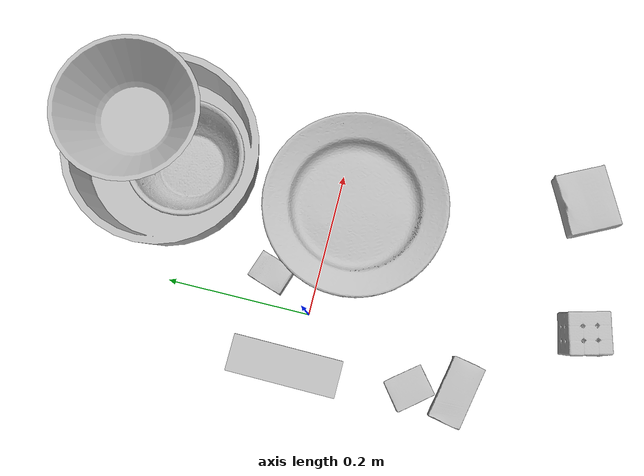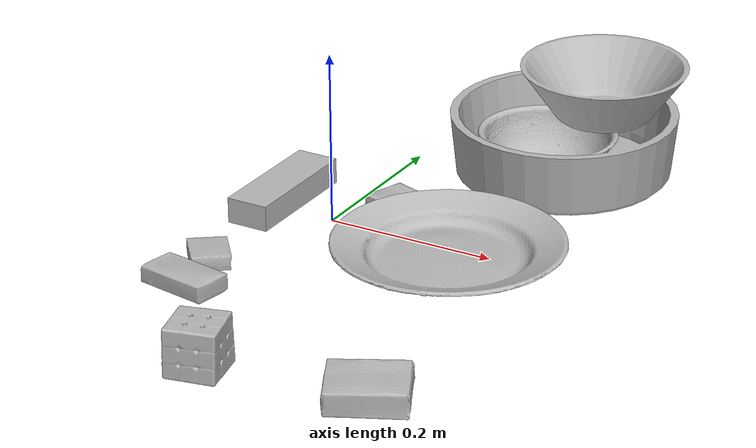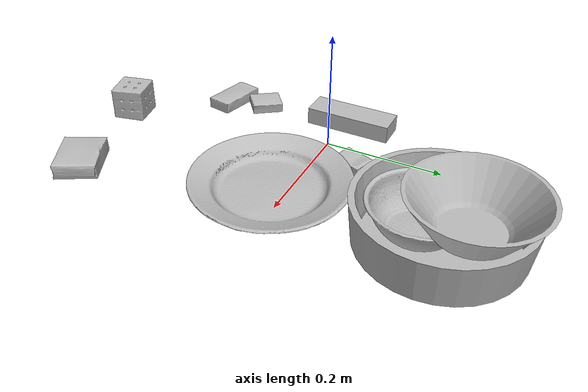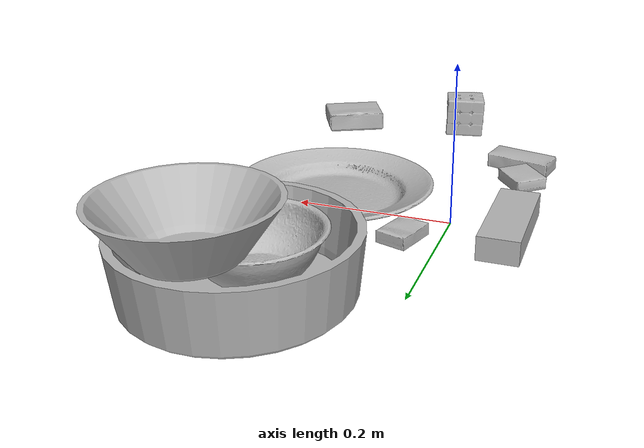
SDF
<sdf version="1.4">
  <world name="default">
    <light name="light1" type="point">
      <pose>0 0 1 0 0 0</pose>
      <diffuse>3 3 3 1</diffuse>
      <specular>3 3 3 1</specular>
    </light>
    <light name="light2" type="point">
      <pose>0 0.5 2 0 0 0</pose>
      <diffuse>1 1 1 1</diffuse>
      <specular>1 1 1 1</specular>
    </light>
    <light name="light3" type="point">
      <pose>0 0.5 2 0 0 0</pose>
      <diffuse>3 3 3 1</diffuse>
      <specular>3 3 3 1</specular>
    </light>
    <scene>
      <ambient>0.7 0.7 0.7</ambient>
    </scene>
    <model name="box1">
      <link name="link_box1">
        <collision name="default">
          <geometry>
            <mesh>
              <uri>model://sugar_box/collision_meshes/collision.obj</uri>
              <scale>0.5 0.5 0.5</scale>
            </mesh>
          </geometry>
          <surface>
            <friction>
              <ode>
                <mu>0.5</mu>
                <mu2>0.5</mu2>
              </ode>
            </friction>
          <contact>
        <ode>
            <max_vel>0</max_vel>
            <min_depth>0.0001</min_depth>
            <kp>1e8</kp>
        </ode>
    </contact></surface>
        </collision>
        <visual name="default">
          <geometry>
            <mesh>
              <uri>model://sugar_box/visual_meshes/visual.dae</uri>
              <scale>0.5 0.5 0.5</scale>
            </mesh>
          </geometry>
        </visual>
        <inertial>
          <mass>0.05968111753463745</mass>
          <pose>0.0005171863595023751 1.924554817378521e-05 -0.00018182402709499002 -0.00040462627153530444 0.0010506635220302928 0.002615378323275012</pose>
          <inertia>
            <ixx>1.2431535e-05</ixx>
            <iyy>4.0181283e-05</iyy>
            <izz>4.8101785e-05</izz>
            <ixy>0</ixy>
            <ixz>0</ixz>
            <iyz>0</iyz>
          </inertia>
        </inertial>
      </link>
      <pose>-0.052664052695035934 -0.21807096898555756 0.011399304494261742 0.0007748781309348916 -0.023433121383693654 -0.2015415393969626</pose>
    </model>
    <model name="box11">
      <link name="link_box11">
        <collision name="default">
          <geometry>
            <mesh>
              <uri>model://cracker_box/collision_meshes/collision.obj</uri>
              <scale>0.25 0.25 0.25</scale>
            </mesh>
          </geometry>
          <surface>
            <friction>
              <ode>
                <mu>0.5</mu>
                <mu2>0.5</mu2>
              </ode>
            </friction>
          <contact>
        <ode>
            <max_vel>0</max_vel>
            <min_depth>0.0001</min_depth>
            <kp>1e8</kp>
        </ode>
    </contact></surface>
        </collision>
        <visual name="default">
          <geometry>
            <mesh>
              <uri>model://cracker_box/visual_meshes/visual.dae</uri>
              <scale>0.25 0.25 0.25</scale>
            </mesh>
          </geometry>
        </visual>
        <inertial>
          <mass>0.04741516709327698</mass>
          <pose>0.0002366035187151283 6.358561950037256e-05 -0.0004257383698131889 -0.00031620780351981393 -0.01110649053153066 0.0025467950031323855</pose>
          <inertia>
            <ixx>7.537689e-06</ixx>
            <iyy>1.2446206e-05</iyy>
            <izz>1.7761875e-05</izz>
            <ixy>0</ixy>
            <ixz>0</ixz>
            <iyz>0</iyz>
          </inertia>
        </inertial>
      </link>
      <pose>0.04348282143473625 0.06340695172548294 0.009096029214560986 -0.014050284056001165 -0.005016810042832311 -1.889185226746026</pose>
    </model>
    <model name="box2">
      <link name="link_box2">
        <collision name="default">
          <geometry>
            <mesh>
              <uri>model://jenga/collision_meshes/collision.obj</uri>
              <scale>1.0 1.0 1.0</scale>
            </mesh>
          </geometry>
          <surface>
            <friction>
              <ode>
                <mu>0.5</mu>
                <mu2>0.5</mu2>
              </ode>
            </friction>
          <contact>
        <ode>
            <max_vel>0</max_vel>
            <min_depth>0.0001</min_depth>
            <kp>1e8</kp>
        </ode>
    </contact></surface>
        </collision>
        <visual name="default">
          <geometry>
            <mesh>
              <uri>model://jenga/visual_meshes/visual.dae</uri>
              <scale>1.0 1.0 1.0</scale>
            </mesh>
          </geometry>
        </visual>
        <inertial>
          <mass>0.17569443583488464</mass>
          <pose>-2.502855807051674e-07 -0.00010250010382151231 -4.0923401684267446e-05 0.0 -7.342153480750062e-07 0.0</pose>
          <inertia>
            <ixx>4.8618913e-05</ixx>
            <iyy>0.00032944046</iyy>
            <izz>0.0003517057</izz>
            <ixy>0</ixy>
            <ixz>0</ixz>
            <iyz>0</iyz>
          </inertia>
        </inertial>
      </link>
      <pose>-0.07395794242620468 0.01388480979949236 0.014999994076788425 1.2337867535123343e-08 -2.278061644932654e-09 -1.5768565911142867</pose>
    </model>
    <model name="box21">
      <link name="link_box21">
        <collision name="default">
          <geometry>
            <mesh>
              <uri>model://rubiks_cube/collision_meshes/collision.obj</uri>
              <scale>1.0 1.0 1.0</scale>
            </mesh>
          </geometry>
          <surface>
            <friction>
              <ode>
                <mu>0.5</mu>
                <mu2>0.5</mu2>
              </ode>
            </friction>
          <contact>
        <ode>
            <max_vel>0</max_vel>
            <min_depth>0.0001</min_depth>
            <kp>1e8</kp>
        </ode>
    </contact></surface>
        </collision>
        <visual name="default">
          <geometry>
            <mesh>
              <uri>model://rubiks_cube/visual_meshes/visual.dae</uri>
              <scale>1.0 1.0 1.0</scale>
            </mesh>
          </geometry>
        </visual>
        <inertial>
          <mass>0.16427944600582123</mass>
          <pose>2.6721041649580002e-05 5.2569666877388954e-05 -7.2643156272533815e-06 -0.05467299197426534 -0.0981400693449792 -0.034455479534688374</pose>
          <inertia>
            <ixx>9.0775415e-05</ixx>
            <iyy>9.0352085e-05</iyy>
            <izz>9.152764e-05</izz>
            <ixy>0</ixy>
            <ixz>0</ixz>
            <iyz>0</iyz>
          </inertia>
        </inertial>
      </link>
      <pose>0.06374123692512512 -0.36468037962913513 0.028678949922323227 -3.968589708983583e-06 -9.859431312776631e-07 -1.3283183384747828</pose>
    </model>
    <model name="box3">
      <link name="link_box3">
        <collision name="default">
          <geometry>
            <mesh>
              <uri>model://gelatin_box/collision_meshes/collision.obj</uri>
              <scale>1.0 1.0 1.0</scale>
            </mesh>
          </geometry>
          <surface>
            <friction>
              <ode>
                <mu>0.5</mu>
                <mu2>0.5</mu2>
              </ode>
            </friction>
          <contact>
        <ode>
            <max_vel>0</max_vel>
            <min_depth>0.0001</min_depth>
            <kp>1e8</kp>
        </ode>
    </contact></surface>
        </collision>
        <visual name="default">
          <geometry>
            <mesh>
              <uri>model://gelatin_box/visual_meshes/visual.dae</uri>
              <scale>1.0 1.0 1.0</scale>
            </mesh>
          </geometry>
        </visual>
        <inertial>
          <mass>0.21197354793548584</mass>
          <pose>0.0004319618456065655 0.00011156872642459348 -0.0003640321083366871 -0.0010503719594585892 -0.004755818227500045 0.016440553882781303</pose>
          <inertia>
            <ixx>0.00014963602</ixx>
            <iyy>0.00010688423</iyy>
            <izz>0.00022777937</izz>
            <ixy>0</ixy>
            <ixz>0</ixz>
            <iyz>0</iyz>
          </inertia>
        </inertial>
      </link>
      <pose>0.24498136341571808 -0.3357345163822174 0.015168314799666405 0.005597474812937298 -0.007304556248981442 2.0338761373459486</pose>
    </model>
    <model name="box31">
      <link name="link_box31">
        <collision name="default">
          <geometry>
            <mesh>
              <uri>model://pudding_box/collision_meshes/collision.obj</uri>
              <scale>0.5 0.5 0.5</scale>
            </mesh>
          </geometry>
          <surface>
            <friction>
              <ode>
                <mu>0.5</mu>
                <mu2>0.5</mu2>
              </ode>
            </friction>
          <contact>
        <ode>
            <max_vel>0</max_vel>
            <min_depth>0.0001</min_depth>
            <kp>1e8</kp>
        </ode>
    </contact></surface>
        </collision>
        <visual name="default">
          <geometry>
            <mesh>
              <uri>model://pudding_box/visual_meshes/visual.dae</uri>
              <scale>0.5 0.5 0.5</scale>
            </mesh>
          </geometry>
        </visual>
        <inertial>
          <mass>0.056796859949827194</mass>
          <pose>0.00024474109522998333 0.0004033942532259971 -0.0002594413817860186 0.005213102251005844 -0.00660379641961884 0.02007983447872704</pose>
          <inertia>
            <ixx>1.605148e-05</ixx>
            <iyy>1.0799551e-05</iyy>
            <izz>2.3704206e-05</izz>
            <ixy>0</ixy>
            <ixz>0</ixz>
            <iyz>0</iyz>
          </inertia>
        </inertial>
      </link>
      <pose>-0.0625757947564125 -0.1550704538822174 0.00986290443688631 0.022348360173495008 -0.011391791050400323 -2.46525541619266</pose>
    </model>
    <model name="plate1">
      <link name="link_plate1">
        <collision name="default">
          <geometry>
            <mesh>
              <uri>model://pan_tefal/collision_meshes/collision.obj</uri>
              <scale>1.0 1.0 1.0</scale>
            </mesh>
          </geometry>
          <surface>
            <friction>
              <ode>
                <mu>0.5</mu>
                <mu2>0.5</mu2>
              </ode>
            </friction>
          <contact>
        <ode>
            <max_vel>0</max_vel>
            <min_depth>0.0001</min_depth>
            <kp>1e8</kp>
        </ode>
    </contact></surface>
        </collision>
        <visual name="default">
          <geometry>
            <mesh>
              <uri>model://pan_tefal/visual_meshes/visual.dae</uri>
              <scale>1.0 1.0 1.0</scale>
            </mesh>
          </geometry>
        </visual>
        <inertial>
          <mass>1.4752264022827148</mass>
          <pose>-0.0001800210156943649 3.278951771790162e-05 -0.008514936082065105 0.0008190241607511121 -0.0003301478392365544 -0.33184922825406304</pose>
          <inertia>
            <ixx>0.010183416</ixx>
            <iyy>0.01024907</iyy>
            <izz>0.018745707</izz>
            <ixy>0</ixy>
            <ixz>0</ixz>
            <iyz>0</iyz>
          </inertia>
        </inertial>
      </link>
      <pose>0.1660918891429901 0.24414962530136108 0.03794874995946884 0.0005768597115536237 0.0005886560607171757 1.905422013750269</pose>
    </model>
    <model name="bowl1">
      <link name="link_bowl1">
        <collision name="default">
          <geometry>
            <mesh>
              <uri>model://bowl/collision_meshes/collision.obj</uri>
              <scale>1.0 1.0 1.0</scale>
            </mesh>
          </geometry>
          <surface>
            <friction>
              <ode>
                <mu>0.5</mu>
                <mu2>0.5</mu2>
              </ode>
            </friction>
          <contact>
        <ode>
            <max_vel>0</max_vel>
            <min_depth>0.0001</min_depth>
            <kp>1e8</kp>
        </ode>
    </contact></surface>
        </collision>
        <visual name="default">
          <geometry>
            <mesh>
              <uri>model://bowl/visual_meshes/visual.dae</uri>
              <scale>1.0 1.0 1.0</scale>
            </mesh>
          </geometry>
        </visual>
        <inertial>
          <mass>0.13335108757019043</mass>
          <pose>0.00020445126574486494 -0.0010302079608663917 -0.0008042646804824471 -0.01576397865263616 0.014546905041115984 0.7140477796865206</pose>
          <inertia>
            <ixx>0.000306318</ixx>
            <iyy>0.00029947367</iyy>
            <izz>0.00051533245</izz>
            <ixy>0</ixy>
            <ixz>0</ixz>
            <iyz>0</iyz>
          </inertia>
        </inertial>
      </link>
      <pose>0.16213363409042358 0.211086705327034 0.03600604832172394 -0.010243501720784799 -0.008609703126422055 -0.9396919756040605</pose>
    </model>
    <model name="plate2">
      <link name="link_plate2">
        <collision name="default">
          <geometry>
            <mesh>
              <uri>model://plate/collision_meshes/collision.obj</uri>
              <scale>1.0 1.0 1.0</scale>
            </mesh>
          </geometry>
          <surface>
            <friction>
              <ode>
                <mu>0.5</mu>
                <mu2>0.5</mu2>
              </ode>
            </friction>
          <contact>
        <ode>
            <max_vel>0</max_vel>
            <min_depth>0.0001</min_depth>
            <kp>1e8</kp>
        </ode>
    </contact></surface>
        </collision>
        <visual name="default">
          <geometry>
            <mesh>
              <uri>model://plate/visual_meshes/visual.dae</uri>
              <scale>1.0 1.0 1.0</scale>
            </mesh>
          </geometry>
        </visual>
        <inertial>
          <mass>0.1753290891647339</mass>
          <pose>-0.0006044620531611145 0.0002782598021440208 -0.0010561987292021513 0.0022188066246853514 -0.003225466953145419 0.45260347799947726</pose>
          <inertia>
            <ixx>0.00082019315</ixx>
            <iyy>0.00081234827</iyy>
            <izz>0.0016041752</izz>
            <ixy>0</ixy>
            <ixz>0</ixz>
            <iyz>0</iyz>
          </inertia>
        </inertial>
      </link>
      <pose>0.1636117398738861 -0.02584923431277275 0.013732999563217163 -1.139766783862488e-09 -1.4959774215856934e-08 2.5470725883569156</pose>
    </model>
    <model name="bowl2">
      <link name="link_bowl2">
        <collision name="default">
          <geometry>
            <mesh>
              <uri>model://bowl_a/collision_meshes/collision.obj</uri>
              <scale>1.0 1.0 1.0</scale>
            </mesh>
          </geometry>
          <surface>
            <friction>
              <ode>
                <mu>0.5</mu>
                <mu2>0.5</mu2>
              </ode>
            </friction>
          <contact>
        <ode>
            <max_vel>0</max_vel>
            <min_depth>0.0001</min_depth>
            <kp>1e8</kp>
        </ode>
    </contact></surface>
        </collision>
        <visual name="default">
          <geometry>
            <mesh>
              <uri>model://bowl_a/visual_meshes/visual.dae</uri>
              <scale>1.0 1.0 1.0</scale>
            </mesh>
          </geometry>
        </visual>
        <inertial>
          <mass>0.4813200831413269</mass>
          <pose>0.0002786751138046384 4.731064836960286e-05 -0.0013765294570475817 -0.0009805320964546374 -0.0010938264681851768 -0.19124047933057892</pose>
          <inertia>
            <ixx>0.0013703406</ixx>
            <iyy>0.0013787533</iyy>
            <izz>0.0024372027</izz>
            <ixy>0</ixy>
            <ixz>0</ixz>
            <iyz>0</iyz>
          </inertia>
        </inertial>
      </link>
      <pose>0.19461722671985626 0.28901106119155884 0.092032290995121 -0.003205209479110732 -0.006211182296471437 2.7905729567548367</pose>
    </model>
  <physics type="ode">
      <max_contacts>50</max_contacts>
      <ode>
        <solver>
          <type>quick</type>
          <iters>75</iters>
        </solver>
        <constraints>
          <contact_max_correcting_vel>0</contact_max_correcting_vel>
          <contact_surface_layer>0</contact_surface_layer>
        </constraints>
      </ode>
    </physics></world>
</sdf>
